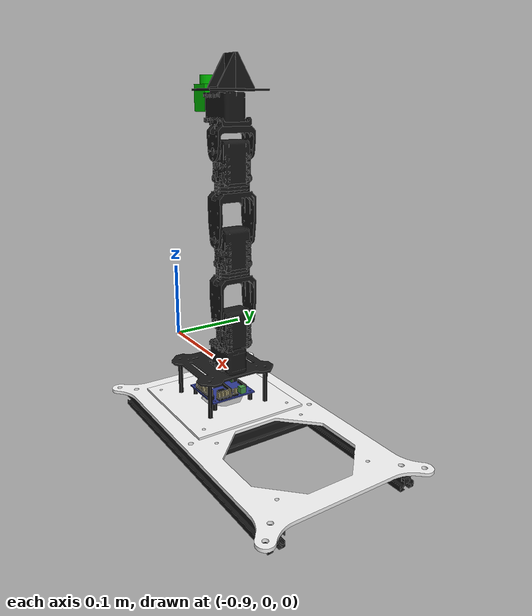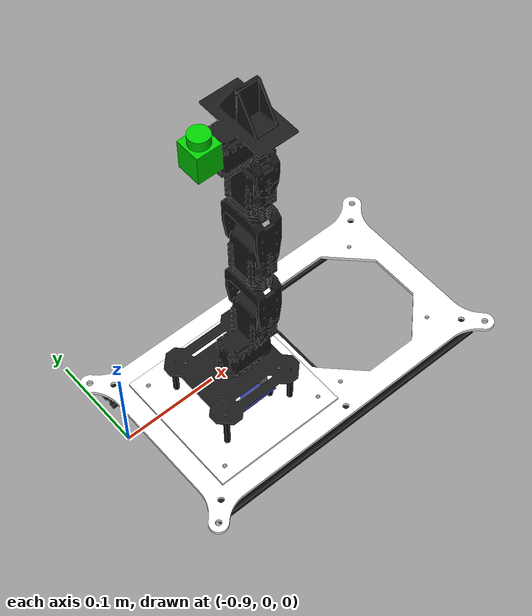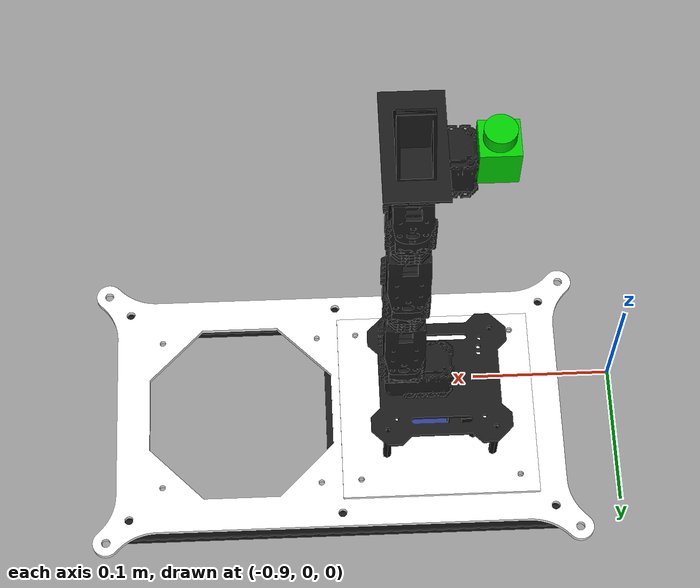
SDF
<sdf version="1.9">
 <world name="moon_camera_sensors">
  <plugin filename="ignition-gazebo-physics-system" name="ignition::gazebo::systems::Physics"/>
  <physics name="dart_physics" type="dart">
   <max_step_size>0.01</max_step_size>
   <real_time_factor>1.0</real_time_factor>
  </physics>
  <gravity>0.0 0.0 -1.622</gravity>
  <scene><ambient>0 0 0</ambient><grid>false</grid></scene>
  <plugin filename="ignition-gazebo-user-commands-system" name="ignition::gazebo::systems::UserCommands"/>
  <plugin filename="ignition-gazebo-scene-broadcaster-system" name="ignition::gazebo::systems::SceneBroadcaster"/>
  <plugin filename="ignition-gazebo-sensors-system" name="ignition::gazebo::systems::Sensors">
   <render_engine>ogre2</render_engine>
  </plugin>
  <light type="directional" name="sun">
   <pose>0 0 10 0 0 0</pose>
   <diffuse>0.8 0.8 0.8 1</diffuse>
   <specular>0.2 0.2 0.2 1</specular>
   <attenuation>
    <range>1000</range>
    <constant>2.5</constant>
    <linear>0.01</linear>
    <quadratic>0.001</quadratic>
   </attenuation>
   <direction>0.25 -0.5 -0.1</direction>
  </light>
  <include>
   <uri>model://phantomx_pincher</uri>
   <pose>-0.7 0 -0.075 0 0 0</pose>
   <plugin filename="ignition-gazebo-detachable-joint-system" name="ignition::gazebo::systems::DetachableJoint">
    <parent_link>phantomx_pincher_arm_wrist_flex_link</parent_link>
    <child_model>camera</child_model>
    <child_link>camera_link</child_link>
   </plugin>
  </include>
  <model name="camera">
   <static>true</static>
   <pose>-0.795 0 0.35 0 -1.5708 0</pose>
   <link name="camera_link">
    <visual name="camera_visual_lens">
     <pose>-0.005 0 0 0 1.5708 0</pose>
     <geometry><cylinder><radius>0.01</radius><length>0.01</length></cylinder></geometry>
     <material>
      <ambient>0.0 0.8 0.0</ambient>
      <diffuse>0.0 0.8 0.0</diffuse>
      <specular>0.0 0.8 0.0</specular>
     </material>
    </visual>
    <visual name="camera_visual_body">
     <pose>-0.025 0 0 0 0 0</pose>
     <geometry><box><size>0.03 0.025 0.025</size></box></geometry>
     <material>
      <ambient>0.0 0.8 0.0</ambient>
      <diffuse>0.0 0.8 0.0</diffuse>
      <specular>0.0 0.8 0.0</specular>
     </material>
    </visual>
    <inertial><mass>0.06</mass><inertia><ixx>0.0004</ixx><iyy>0.00145</iyy><izz>0.00145</izz></inertia></inertial>
    <sensor name="rgbd_camera" type="rgbd_camera">
     <camera>
      <horizontal_fov>1.047</horizontal_fov>
      <image><width>320</width><height>240</height></image>
      <clip><near>0.001</near><far>1000</far></clip>
      <depth_camera><clip><near>0.1</near><far>10</far></clip></depth_camera>
      <noise><type>gaussian</type><mean>0.0</mean><stddev>0.0</stddev></noise>
     </camera>
     <always_on>1</always_on>
     <update_rate>30</update_rate>
     <visualize>true</visualize>
     <topic>rgbd_camera</topic>
    </sensor>
    <sensor name="instance_segmentation_camera" type="segmentation">
     <topic>instance</topic>
     <camera>
      <segmentation_type>instance</segmentation_type>
      <horizontal_fov>1.047</horizontal_fov>
      <image><width>320</width><height>240</height></image>
      <clip><near>0.001</near><far>1000</far></clip>
     </camera>
     <always_on>1</always_on>
     <update_rate>30</update_rate>
     <visualize>true</visualize>
    </sensor>
    <sensor name="semantic_segmentation_camera" type="segmentation">
     <topic>semantic</topic>
     <camera>
      <segmentation_type>semantic</segmentation_type>
      <horizontal_fov>1.047</horizontal_fov>
      <image><width>320</width><height>240</height></image>
      <clip><near>0.001</near><far>1000</far></clip>
     </camera>
     <always_on>1</always_on>
     <update_rate>30</update_rate>
     <visualize>true</visualize>
    </sensor>
   </link>
  </model>
 </world>
</sdf>
